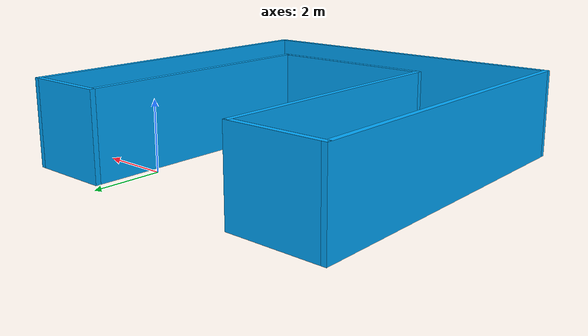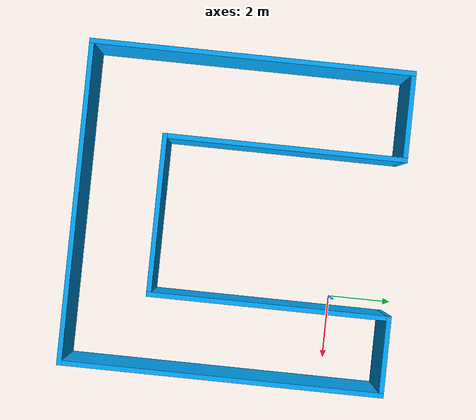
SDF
<?xml version='1.0'?>
<sdf version='1.6'>
  <model name='mybuilding'>
    <pose frame=''>-2.21016 -3.24061 0 0 -0 0</pose>
    <link name='Wall_15'>
      <collision name='Wall_15_Collision'>
        <geometry>
          <box>
            <size>10 0.15 2.5</size>
          </box>
        </geometry>
        <pose frame=''>0 0 1.25 0 -0 0</pose>
      </collision>
      <visual name='Wall_15_Visual'>
        <pose frame=''>0 0 1.25 0 -0 0</pose>
        <geometry>
          <box>
            <size>10 0.15 2.5</size>
          </box>
        </geometry>
        <material>
          <script>
            <uri>file://media/materials/scripts/gazebo.material</uri>
            <name>Gazebo/Grey</name>
          </script>
          <ambient>0 0.666667 1 1</ambient>
        </material>
      </visual>
      <pose frame=''>-4.925 0 0 0 -0 1.5708</pose>
    </link>
    <link name='Wall_18'>
      <collision name='Wall_18_Collision'>
        <geometry>
          <box>
            <size>10 0.15 2.5</size>
          </box>
        </geometry>
        <pose frame=''>0 0 1.25 0 -0 0</pose>
      </collision>
      <visual name='Wall_18_Visual'>
        <pose frame=''>0 0 1.25 0 -0 0</pose>
        <geometry>
          <box>
            <size>10 0.15 2.5</size>
          </box>
        </geometry>
        <material>
          <script>
            <uri>file://media/materials/scripts/gazebo.material</uri>
            <name>Gazebo/Grey</name>
          </script>
          <ambient>0 0.666667 1 1</ambient>
        </material>
      </visual>
      <pose frame=''>0 -4.925 0 0 -0 0</pose>
    </link>
    <link name='Wall_19'>
      <collision name='Wall_19_Collision'>
        <geometry>
          <box>
            <size>10 0.15 2.5</size>
          </box>
        </geometry>
        <pose frame=''>0 0 1.25 0 -0 0</pose>
      </collision>
      <visual name='Wall_19_Visual'>
        <pose frame=''>0 0 1.25 0 -0 0</pose>
        <geometry>
          <box>
            <size>10 0.15 2.5</size>
          </box>
        </geometry>
        <material>
          <script>
            <uri>file://media/materials/scripts/gazebo.material</uri>
            <name>Gazebo/Grey</name>
          </script>
          <ambient>0 0.666667 1 1</ambient>
        </material>
      </visual>
      <pose frame=''>4.925 0 0 0 -0 1.5708</pose>
    </link>
    <link name='Wall_20'>
      <collision name='Wall_20_Collision'>
        <geometry>
          <box>
            <size>2.5 0.15 2.5</size>
          </box>
        </geometry>
        <pose frame=''>0 0 1.25 0 -0 0</pose>
      </collision>
      <visual name='Wall_20_Visual'>
        <pose frame=''>0 0 1.25 0 -0 0</pose>
        <geometry>
          <box>
            <size>2.5 0.15 2.5</size>
          </box>
        </geometry>
        <material>
          <script>
            <uri>file://media/materials/scripts/gazebo.material</uri>
            <name>Gazebo/Grey</name>
          </script>
          <ambient>0 0.666667 1 1</ambient>
        </material>
      </visual>
      <pose frame=''>3.75 4.925 0 0 -0 3.14159</pose>
    </link>
    <link name='Wall_21'>
      <collision name='Wall_21_Collision'>
        <geometry>
          <box>
            <size>7.5 0.15 2.5</size>
          </box>
        </geometry>
        <pose frame=''>0 0 1.25 0 -0 0</pose>
      </collision>
      <visual name='Wall_21_Visual'>
        <pose frame=''>0 0 1.25 0 -0 0</pose>
        <geometry>
          <box>
            <size>7.5 0.15 2.5</size>
          </box>
        </geometry>
        <material>
          <script>
            <uri>file://media/materials/scripts/gazebo.material</uri>
            <name>Gazebo/Grey</name>
          </script>
          <ambient>0 0.666667 1 1</ambient>
        </material>
      </visual>
      <pose frame=''>2.575 1.25 0 0 0 -1.5708</pose>
    </link>
    <link name='Wall_22'>
      <collision name='Wall_22_Collision'>
        <geometry>
          <box>
            <size>5 0.15 2.5</size>
          </box>
        </geometry>
        <pose frame=''>0 0 1.25 0 -0 0</pose>
      </collision>
      <visual name='Wall_22_Visual'>
        <pose frame=''>0 0 1.25 0 -0 0</pose>
        <geometry>
          <box>
            <size>5 0.15 2.5</size>
          </box>
        </geometry>
        <material>
          <script>
            <uri>file://media/materials/scripts/gazebo.material</uri>
            <name>Gazebo/Grey</name>
          </script>
          <ambient>0 0.666667 1 1</ambient>
        </material>
      </visual>
      <pose frame=''>0.15 -2.425 0 0 -0 3.14159</pose>
    </link>
    <link name='Wall_23'>
      <collision name='Wall_23_Collision'>
        <geometry>
          <box>
            <size>7.5 0.15 2.5</size>
          </box>
        </geometry>
        <pose frame=''>0 0 1.25 0 -0 0</pose>
      </collision>
      <visual name='Wall_23_Visual'>
        <pose frame=''>0 0 1.25 0 -0 0</pose>
        <geometry>
          <box>
            <size>7.5 0.15 2.5</size>
          </box>
        </geometry>
        <material>
          <script>
            <uri>file://media/materials/scripts/gazebo.material</uri>
            <name>Gazebo/Grey</name>
          </script>
          <ambient>0 0.666667 1 1</ambient>
        </material>
      </visual>
      <pose frame=''>-2.275 1.25 0 0 -0 1.5708</pose>
    </link>
    <link name='Wall_24'>
      <collision name='Wall_24_Collision'>
        <geometry>
          <box>
            <size>2.8 0.15 2.5</size>
          </box>
        </geometry>
        <pose frame=''>0 0 1.25 0 -0 0</pose>
      </collision>
      <visual name='Wall_24_Visual'>
        <pose frame=''>0 0 1.25 0 -0 0</pose>
        <geometry>
          <box>
            <size>2.8 0.15 2.5</size>
          </box>
        </geometry>
        <material>
          <script>
            <uri>file://media/materials/scripts/gazebo.material</uri>
            <name>Gazebo/Grey</name>
          </script>
          <ambient>0 0.666667 1 1</ambient>
        </material>
      </visual>
      <pose frame=''>-3.6 4.925 0 0 0 -3.14159</pose>
    </link>
    <static>1</static>
  </model>
</sdf>
